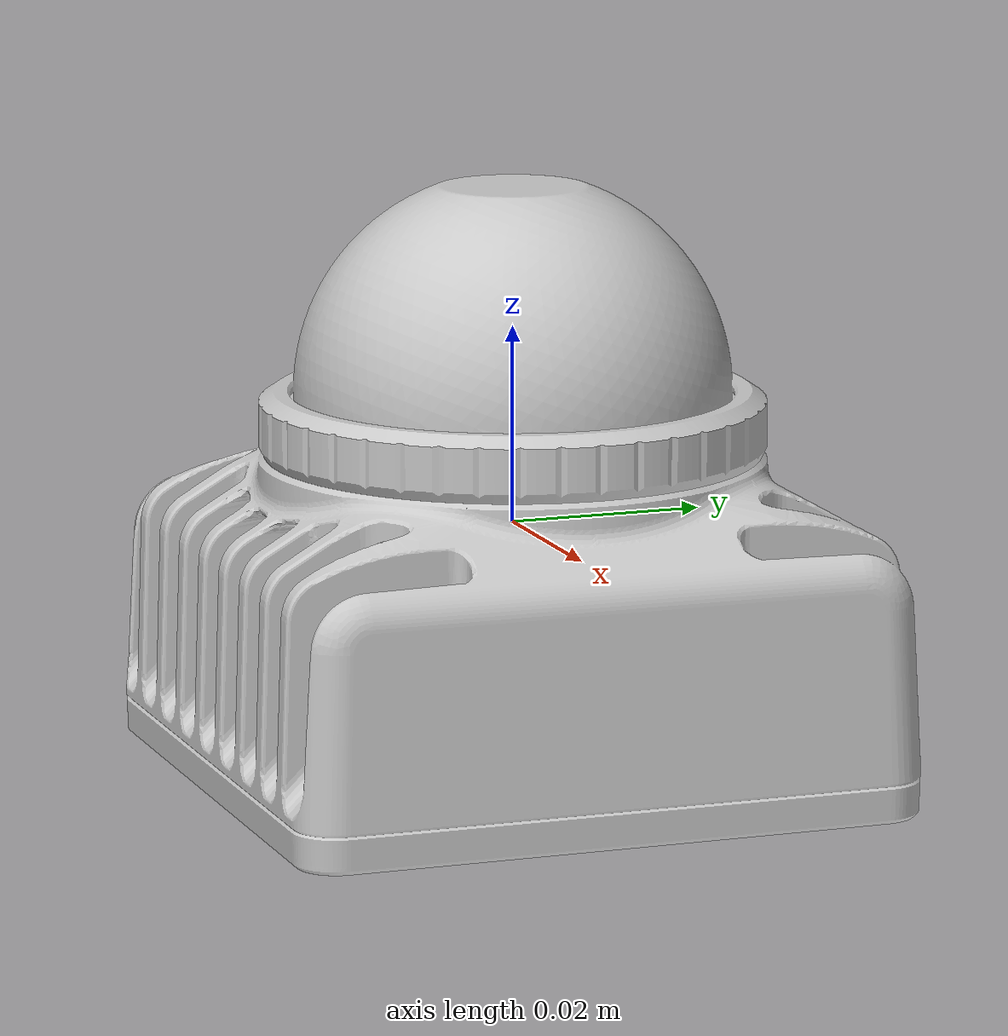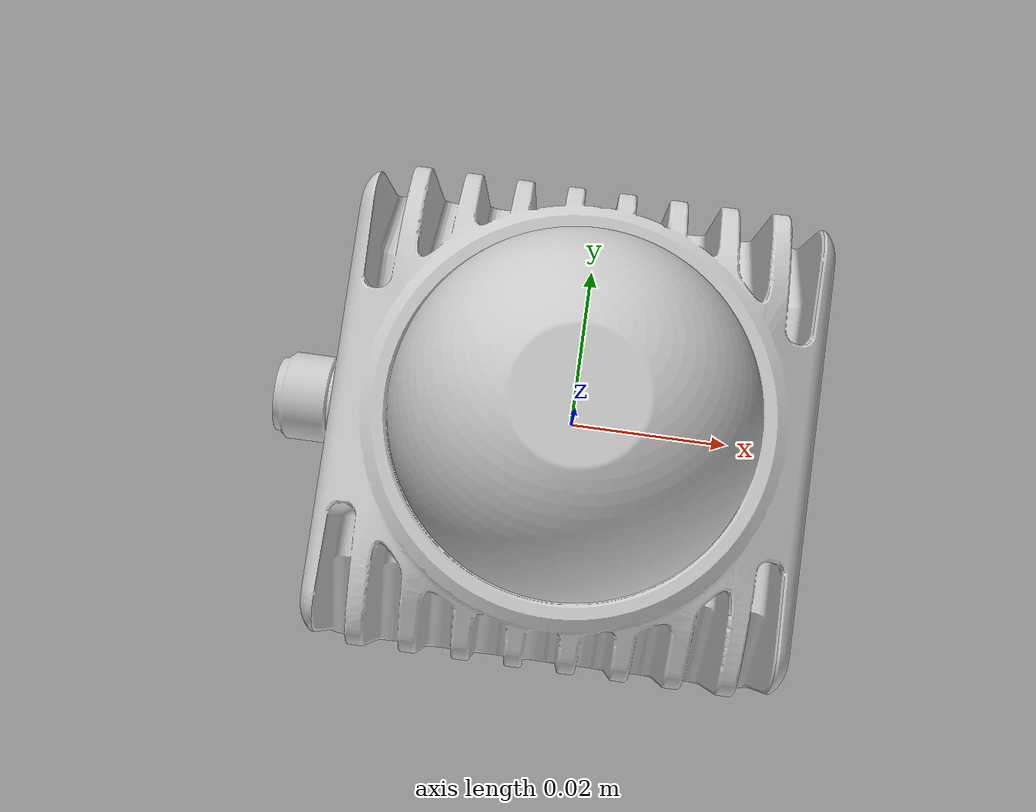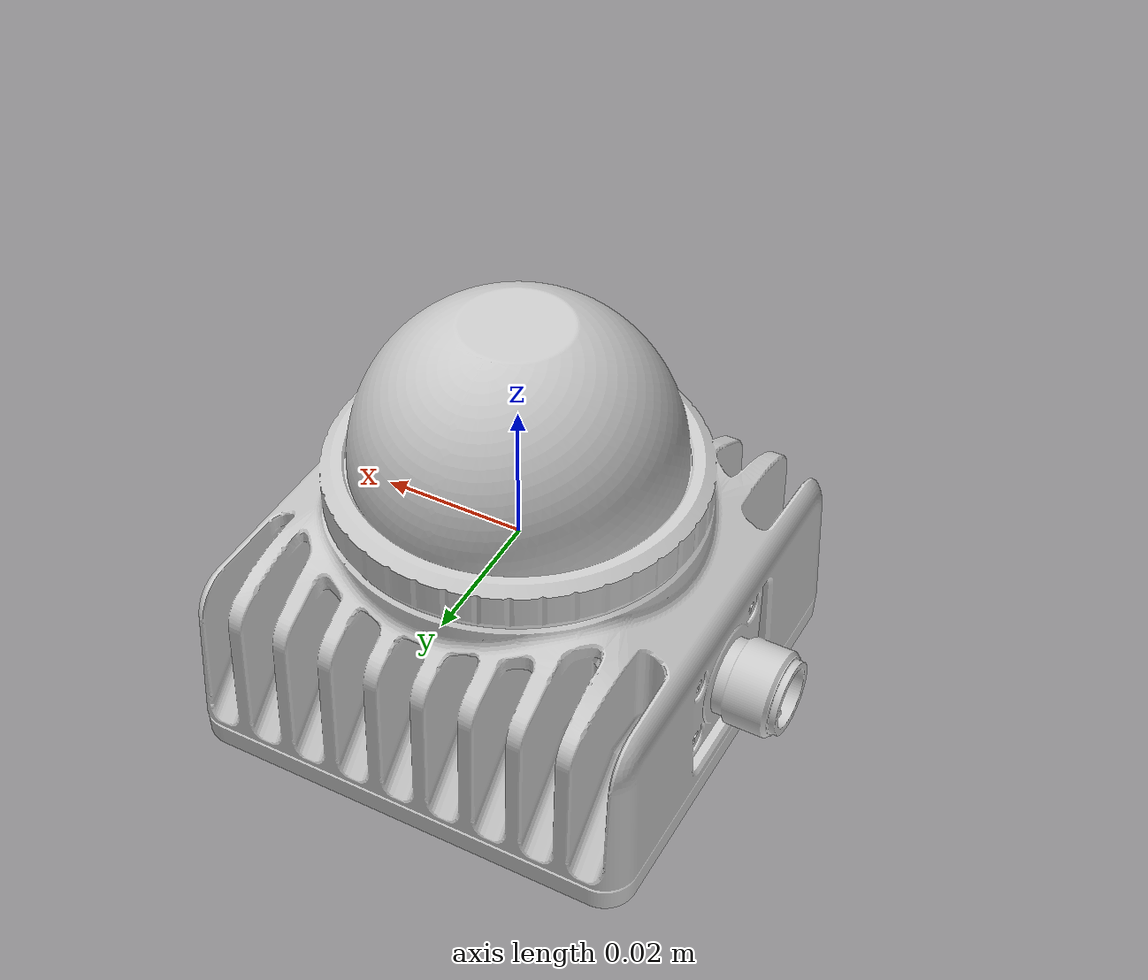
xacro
<?xml version="1.0"?>
<robot xmlns:xacro="http://ros.org/wiki/xacro">

  <xacro:property name="M_PI" value="3.14159"/>
  <xacro:property name="laser_min_range" value="0.1"/>
  <xacro:property name="laser_max_range" value="200.0"/>
  <xacro:property name="ros_topic" value="scan"/>
  <xacro:property name="samples" value="24000"/>
  <xacro:property name="downsample" value="1"/>

  <xacro:macro name="null_inertial">
    <inertial>
      <mass value="0.1"/>
    <inertia ixx="0.01" ixy="0" ixz="0"
          iyy="0.01" iyz="0"
          izz="0.01"/>
    </inertial>
  </xacro:macro>
  <xacro:macro name="Livox_Mid_gazebo_sensor" params="visualize:=True update_rate:=10 resolution:=0.002 noise_mean:=0.0 noise_stddev:=0.01 name:=livox">
    <gazebo reference="${name}">
      <sensor type="ray" name="${name}">
        <pose>0 0 0 0 0 0</pose>
        <visualize>${visualize}</visualize>
        <update_rate>${update_rate}</update_rate>
        <!-- This ray plgin is only for visualization. -->
        <plugin name="gazebo_ros_laser_controller" filename="liblivox_laser_simulation.so">
			<ray>
			  <scan>
				<horizontal>
				<samples>100</samples>
				<resolution>1</resolution>
				<min_angle>${0}</min_angle>
				<max_angle>${2*M_PI}</max_angle>
				</horizontal>
				<vertical>
				<samples>360</samples>
				<resolution>1</resolution>
				<min_angle>${-7.22/180*M_PI}</min_angle>
				<max_angle>${55.22/180*M_PI}</max_angle>
				</vertical>
			  </scan>
			  <range>
				<min>${laser_min_range}</min>
				<max>${laser_max_range}</max>
				<resolution>${resolution}</resolution>
			  </range>
			  <noise>
				<type>gaussian</type>
				<mean>${noise_mean}</mean>
				<stddev>${noise_stddev}</stddev>
			  </noise>
			</ray>
          <visualize>${visualize}</visualize>
		  <samples>${samples}</samples>
		  <downsample>${downsample}</downsample>
		  <csv_file_name>package://livox_laser_simulation/scan_mode/mid360.csv</csv_file_name>
		  <ros_topic>${ros_topic}</ros_topic>
        </plugin>
      </sensor>
    </gazebo>
  </xacro:macro>

  <xacro:macro name="Livox_Mid40" params="visualize:=True name:=livox">
    <link name="${name}_base">
      <xacro:null_inertial/>
      <visual>
        <origin xyz="0.00 0 0.0" rpy="1.57 0 3.14"/>
        <geometry>
          <mesh filename="package://livox_laser_simulation/meshes/livox_mid360.dae" scale="0.001 0.001 0.001">
          </mesh>
        </geometry>
      </visual>

      <collision>
		  <origin xyz="0 0 0" rpy="1.57 0 3.14" />
      <geometry>
        <mesh filename="package://livox_laser_simulation/meshes/livox_mid360.dae" scale="0.001 0.001 0.001">
        </mesh>
      </geometry>
      </collision>
    </link>
    <link name="${name}">
      <xacro:null_inertial/>
    </link>

    <joint name="${name}_to_${name}_base_joint" type="fixed">
      <origin rpy="0 0 0" xyz="0.0 0.0 0.03"/>
      <parent link="${name}_base"/>
      <child link="${name}"/>
      <axis xyz="0 0 0" />
    </joint>
    <xacro:Livox_Mid_gazebo_sensor name="${name}" visualize="${visualize}"/>
  </xacro:macro>
    <xacro:Livox_Mid40 name="livox"/>
</robot>
